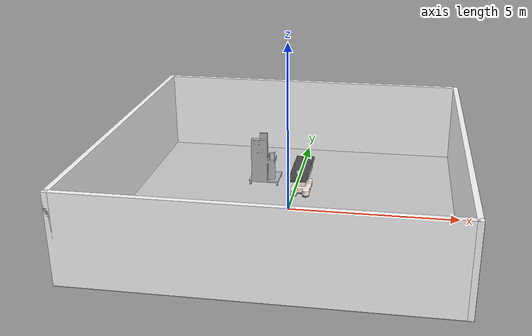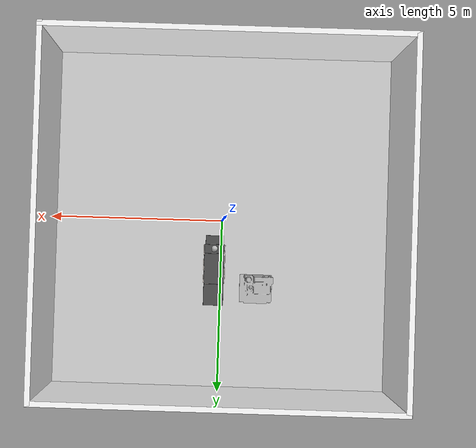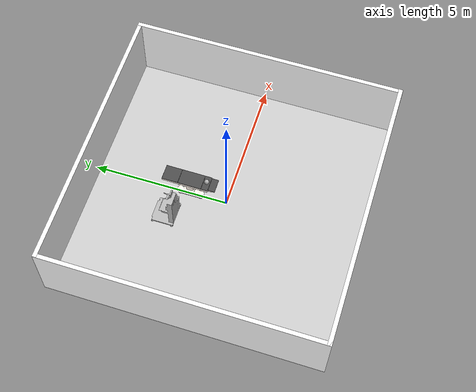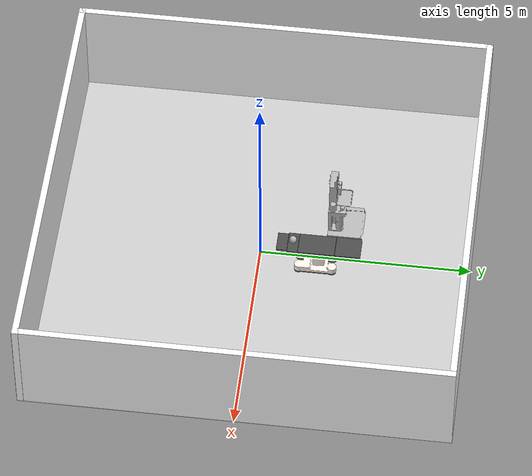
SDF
<sdf version="1.5">
 <world name="default">
  <plugin name="ros_link_attacher_plugin" filename="libgazebo_ros_link_attacher.so"/>
  <scene>
   <ambient>0.4 0.4 0.4 1</ambient>
   <background>0.25 0.25 0.25 1</background>
   <shadows>false</shadows>
  </scene>
  <light type="directional" name="some_light">
   <diffuse>0.6 0.6 0.6 0</diffuse>
   <specular>1 1 1 0</specular>
   <direction>-1 -1 -1</direction>
  </light>
  <include><uri>model://operating_ground_plane</uri></include>
  <include><uri>model://Walls</uri></include>
  <include><uri>model://Walls</uri><pose>0 0 0 0 0 3.14</pose></include>
  <include>
   <pose>0.2 1.45 0 0 0 1.57</pose>
   <uri>model://operating_table</uri>
   <name>operating_table</name>
  </include>
  <include><uri>model://head</uri><name>head</name></include>
  <include><pose>-1.5 1.5 0 0 0 0</pose><uri>model://maq_anestesia</uri><name>maq_anestesia</name></include>
 </world>
</sdf>

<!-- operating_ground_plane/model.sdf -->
<sdf version="1.5">
   <model name="my_ground_plane">
      <static>true</static>
      <link name="link">
         <collision name="collision">
            <geometry>
               <plane>
                  <normal>0 0 1</normal>
                  <size>100 100</size>
               </plane>
            </geometry>
            <surface>
               <friction>
                  <ode>
                     <mu>100</mu>
                     <mu2>50</mu2>
                  </ode>
               </friction>
            </surface>
         </collision>
         <visual name="visual">
            <cast_shadows>false</cast_shadows>
            <geometry>
               <plane>
                  <normal>0 0 1</normal>
                  <size>10 10</size>
               </plane>
            </geometry>
            <material>
               <script>
                  <uri>model://operating_ground_plane/materials/scripts</uri>
                  <uri>model://operating_ground_plane/materials/textures/</uri>
                  <name>OperatingGroundPlane/Image</name>
               </script>
            </material>
         </visual>
      </link>
   </model>
</sdf>

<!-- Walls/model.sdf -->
<sdf version='1.6'>
  <model name='Walls'>
    <pose frame=''>-0.0 -0.0 0 0 -0 0</pose>
    <link name='Wall_24'>
      <collision name='Wall_24_Collision'>
        <geometry>
          <box>
            <size>10 0.15 2.5</size>
          </box>
        </geometry>
        <pose frame=''>0 0 1.25 0 -0 0</pose>
      </collision>
      <visual name='Wall_24_Visual'>
        <pose frame=''>0 0 1.25 0 -0 0</pose>
        <geometry>
          <box>
            <size>10 0.15 2.5</size>
          </box>
        </geometry>
        <material>
          <ambient>1 1 1 1</ambient>
          <diffuse>1 1 1 1</diffuse>
          <specular>0 0 0 0</specular>
          <emissive>0 0 0 1</emissive>
        </material>
        <meta>
          <layer>0</layer>
        </meta>
      </visual>
      <pose frame=''>0 -4.925 0 0 -0 0</pose>
    </link>
    <link name='Wall_26'>
      <collision name='Wall_26_Collision'>
        <geometry>
          <box>
            <size>10 0.15 2.5</size>
          </box>
        </geometry>
        <pose frame=''>0 0 1.25 0 -0 0</pose>
      </collision>
      <visual name='Wall_26_Visual'>
        <pose frame=''>0 0 1.25 0 -0 0</pose>
        <geometry>
          <box>
            <size>10 0.15 2.5</size>
          </box>
        </geometry>
        <material>
          <ambient>1 1 1 1</ambient>
          <diffuse>1 1 1 1</diffuse>
          <specular>0 0 0 0</specular>
          <emissive>0 0 0 1</emissive>
        </material>
        <meta>
          <layer>0</layer>
        </meta>
      </visual>
      <pose frame=''>-4.925 -0 0 0 -0 -1.5708</pose>
    </link>
    <static>1</static>
  </model>
</sdf>

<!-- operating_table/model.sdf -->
<sdf version="1.5">
  <model name="operating_table">
    <static>true</static>
    <link name="table">
      <inertial>
        <mass>40</mass>
      </inertial>

      <collision name="collision_table">
        <geometry>
          <box>
            <size>2.0 0.735 0.66</size>
          </box>
        </geometry>
        <pose>0 0 0.33 0 0 0</pose>
      </collision>

      <visual name="visual_table">
        <geometry>
          <mesh>
            <uri>model://operating_table/meshes/operating_table.dae</uri>
          </mesh>
        </geometry>
      </visual>
    </link>
  </model>
</sdf>

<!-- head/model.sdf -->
<sdf version="1.5">
  <model name="operating_head">
    <static>true</static>
    <link name="head">
      <pose>0.2 0.8 0.83 0 0 0</pose>
      <collision name="collision_head">
        <geometry>
          <sphere>
            <radius>0.09</radius>
          </sphere>
        </geometry>
      </collision>
      <visual name="visual_head">
        <geometry>
          <sphere>
            <radius>0.09</radius>
          </sphere>
        </geometry>
      </visual>
    </link>
  </model>
</sdf>

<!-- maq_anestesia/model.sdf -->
<sdf version="1.5">
  <model name="anestesia_table">
    <static>true</static>
    <link name="table">
      <inertial>
        <mass>20</mass>
      </inertial>
      <collision name="collision_table">
        <geometry>
          <mesh>
            <uri>model://maq_anestesia/meshes/maq_anestesia.stl</uri>
            <scale>0.001 0.001 0.001</scale>
          </mesh>
        </geometry>
        <surface>
        </surface>
      </collision>
      <visual name="visual_table">
        <geometry>
          <mesh>
            <uri>model://maq_anestesia/meshes/maq_anestesia.stl</uri>
            <scale>0.001 0.001 0.001</scale>
          </mesh>
        </geometry>
        <material>
          <script>
          </script>
        </material>
      </visual>
    </link>

  </model>
</sdf>
